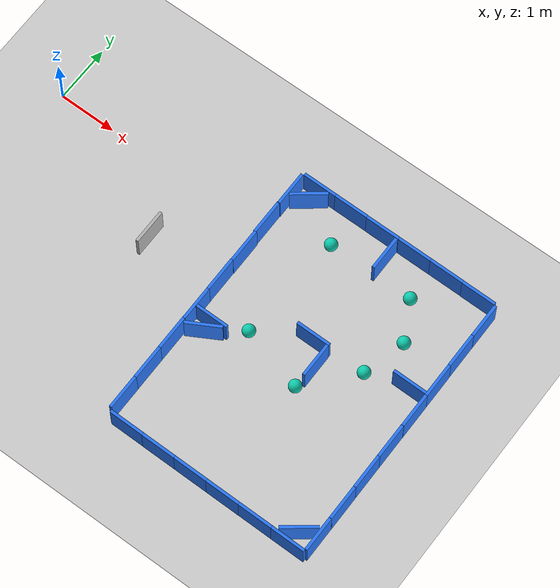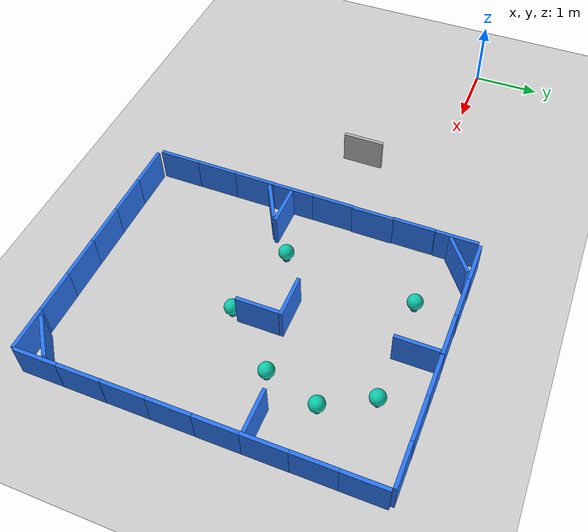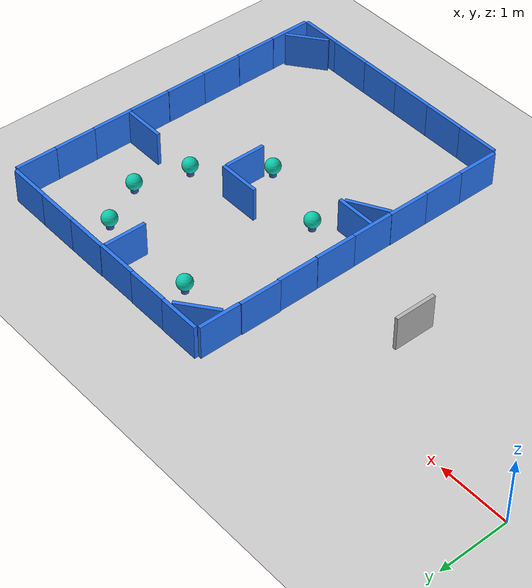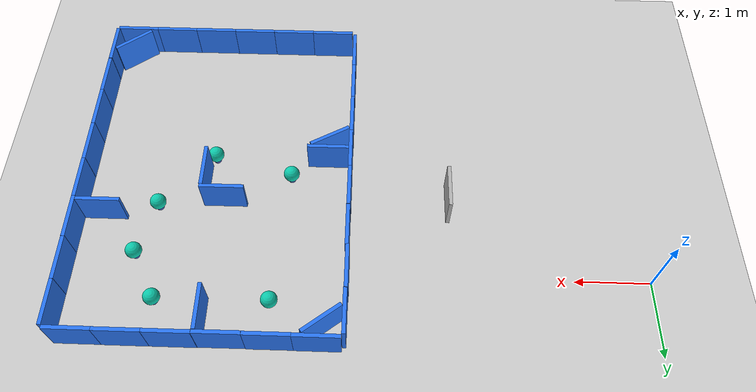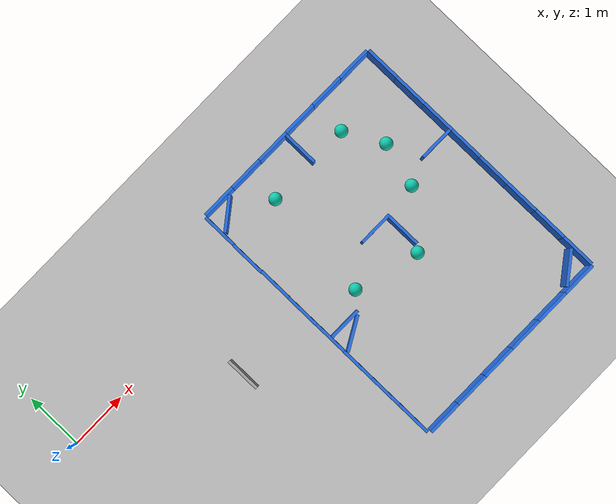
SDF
<sdf version="1.8">
 <world name="default">
  <model name="ground_plane">
   <static>true</static>
   <link name="link">
    <collision name="collision">
     <geometry><plane><normal>0 0 1</normal><size>100 100</size></plane></geometry>
    </collision>
    <visual name="visual">
     <geometry><plane><normal>0 0 1</normal><size>100 100</size></plane></geometry>
     <material>
      <ambient>0.800000012 0.800000012 0.800000012 1</ambient>
      <diffuse>0.800000012 0.800000012 0.800000012 1</diffuse>
      <specular>0.800000012 0.800000012 0.800000012 1</specular>
     </material>
    </visual>
    <inertial>
     <mass>1</mass>
     <inertia><ixx>1</ixx><ixy>0</ixy><ixz>0</ixz><iyy>1</iyy><iyz>0</iyz><izz>1</izz></inertia>
    </inertial>
   </link>
  </model>
  <model name="box_12">
   <pose>2.6281152505346235 -1.1352186579326506 0.26292601227760315 0 0 0</pose>
   <link name="box_link">
    <inertial>
     <inertia><ixx>0.16666</ixx><ixy>0</ixy><ixz>0</ixz><iyy>0.16666</iyy><iyz>0</iyz><izz>0.16666</izz></inertia>
     <mass>1</mass>
    </inertial>
    <collision name="box_collision">
     <geometry><box><size>0.050000000000000003 0.55 0.5</size></box></geometry>
    </collision>
    <visual name="box_visual">
     <geometry><box><size>0.050000000000000003 0.59999999999999998 0.5</size></box></geometry>
     <material>
      <ambient>0.300000012 0.300000012 0.300000012 1</ambient>
      <diffuse>0.699999988 0.699999988 0.699999988 1</diffuse>
      <specular>1 1 1 1</specular>
     </material>
    </visual>
   </link>
   <static>true</static>
  </model>
  <model name="digital_box">
   <pose>3.9757900238 0.67777901887893677 0.26292604207992554 0 0 0</pose>
   <link name="box_link">
    <inertial>
     <inertia><ixx>0.16666</ixx><ixy>0</ixy><ixz>0</ixz><iyy>0.16666</iyy><iyz>0</iyz><izz>0.16666</izz></inertia>
     <mass>1</mass>
    </inertial>
    <collision name="box_collision">
     <geometry><box><size>0.050000000000000003 0.55 0.5</size></box></geometry>
    </collision>
    <visual name="box_visual">
     <geometry><box><size>0.050000000000000003 0.59999999999999998 0.5</size></box></geometry>
     <material>
      <ambient>0.08 0.28 0.75 1</ambient>
      <diffuse>0.16 0.46 0.95 1</diffuse>
      <specular>1 1 1 1</specular>
     </material>
    </visual>
   </link>
   <static>true</static>
  </model>
  <model name="digital_box_1">
   <pose>3.97 0.070000000000000007 0.26000000000000001 0 0 0</pose>
   <link name="box_link">
    <inertial>
     <inertia><ixx>0.16666</ixx><ixy>0</ixy><ixz>0</ixz><iyy>0.16666</iyy><iyz>0</iyz><izz>0.16666</izz></inertia>
     <mass>1</mass>
    </inertial>
    <collision name="box_collision">
     <geometry><box><size>0.050000000000000003 0.55 0.5</size></box></geometry>
    </collision>
    <visual name="box_visual">
     <geometry><box><size>0.050000000000000003 0.59999999999999998 0.5</size></box></geometry>
     <material>
      <ambient>0.08 0.28 0.75 1</ambient>
      <diffuse>0.16 0.46 0.95 1</diffuse>
      <specular>1 1 1 1</specular>
     </material>
    </visual>
   </link>
   <static>true</static>
  </model>
  <model name="digital_box_2">
   <pose>3.98 -0.52000000000000002 0.26000000000000001 0 0 0</pose>
   <link name="box_link">
    <inertial>
     <inertia><ixx>0.16666</ixx><ixy>0</ixy><ixz>0</ixz><iyy>0.16666</iyy><iyz>0</iyz><izz>0.16666</izz></inertia>
     <mass>1</mass>
    </inertial>
    <collision name="box_collision">
     <geometry><box><size>0.050000000000000003 0.55 0.5</size></box></geometry>
    </collision>
    <visual name="box_visual">
     <geometry><box><size>0.050000000000000003 0.59999999999999998 0.5</size></box></geometry>
     <material>
      <ambient>0.08 0.28 0.75 1</ambient>
      <diffuse>0.16 0.46 0.95 1</diffuse>
      <specular>1 1 1 1</specular>
     </material>
    </visual>
   </link>
   <static>true</static>
  </model>
  <model name="digital_box_3">
   <pose>3.97738003731 -1.1138999462127686 0.26708531379699707 0 0 0</pose>
   <link name="box_link">
    <inertial>
     <inertia><ixx>0.16666</ixx><ixy>0</ixy><ixz>0</ixz><iyy>0.16666</iyy><iyz>0</iyz><izz>0.16666</izz></inertia>
     <mass>1</mass>
    </inertial>
    <collision name="box_collision">
     <geometry><box><size>0.050000000000000003 0.55 0.5</size></box></geometry>
    </collision>
    <visual name="box_visual">
     <geometry><box><size>0.050000000000000003 0.59999999999999998 0.5</size></box></geometry>
     <material>
      <ambient>0.08 0.28 0.75 1</ambient>
      <diffuse>0.16 0.46 0.95 1</diffuse>
      <specular>1 1 1 1</specular>
     </material>
    </visual>
   </link>
   <static>true</static>
  </model>
  <model name="digital_box_4">
   <pose>3.97941994667 -1.7115800380706787 0.26702764630317688 0 0 0</pose>
   <link name="box_link">
    <inertial>
     <inertia><ixx>0.16666</ixx><ixy>0</ixy><ixz>0</ixz><iyy>0.16666</iyy><iyz>0</iyz><izz>0.16666</izz></inertia>
     <mass>1</mass>
    </inertial>
    <collision name="box_collision">
     <geometry><box><size>0.050000000000000003 0.55 0.5</size></box></geometry>
    </collision>
    <visual name="box_visual">
     <geometry><box><size>0.050000000000000003 0.59999999999999998 0.5</size></box></geometry>
     <material>
      <ambient>0.08 0.28 0.75 1</ambient>
      <diffuse>0.16 0.46 0.95 1</diffuse>
      <specular>1 1 1 1</specular>
     </material>
    </visual>
   </link>
   <static>true</static>
  </model>
  <model name="digital_box_5">
   <pose>3.97658002377 -2.3114299774169922 0.26691371202468872 0 0 0</pose>
   <link name="box_link">
    <inertial>
     <inertia><ixx>0.16666</ixx><ixy>0</ixy><ixz>0</ixz><iyy>0.16666</iyy><iyz>0</iyz><izz>0.16666</izz></inertia>
     <mass>1</mass>
    </inertial>
    <collision name="box_collision">
     <geometry><box><size>0.050000000000000003 0.55 0.5</size></box></geometry>
    </collision>
    <visual name="box_visual">
     <geometry><box><size>0.050000000000000003 0.59999999999999998 0.5</size></box></geometry>
     <material>
      <ambient>0.08 0.28 0.75 1</ambient>
      <diffuse>0.16 0.46 0.95 1</diffuse>
      <specular>1 1 1 1</specular>
     </material>
    </visual>
   </link>
   <static>true</static>
  </model>
  <model name="digital_box_6">
   <pose>3.97661995888 -2.9101500511169434 0.26712024211883545 0 0 0</pose>
   <link name="box_link">
    <inertial>
     <inertia><ixx>0.16666</ixx><ixy>0</ixy><ixz>0</ixz><iyy>0.16666</iyy><iyz>0</iyz><izz>0.16666</izz></inertia>
     <mass>1</mass>
    </inertial>
    <collision name="box_collision">
     <geometry><box><size>0.050000000000000003 0.55 0.5</size></box></geometry>
    </collision>
    <visual name="box_visual">
     <geometry><box><size>0.050000000000000003 0.59999999999999998 0.5</size></box></geometry>
     <material>
      <ambient>0.08 0.28 0.75 1</ambient>
      <diffuse>0.16 0.46 0.95 1</diffuse>
      <specular>1 1 1 1</specular>
     </material>
    </visual>
   </link>
   <static>true</static>
  </model>
  <model name="digital_box_7">
   <pose>3.97784996033 -3.5036098957061768 0.26729947328567505 0 0 0</pose>
   <link name="box_link">
    <inertial>
     <inertia><ixx>0.16666</ixx><ixy>0</ixy><ixz>0</ixz><iyy>0.16666</iyy><iyz>0</iyz><izz>0.16666</izz></inertia>
     <mass>1</mass>
    </inertial>
    <collision name="box_collision">
     <geometry><box><size>0.050000000000000003 0.55 0.5</size></box></geometry>
    </collision>
    <visual name="box_visual">
     <geometry><box><size>0.050000000000000003 0.59999999999999998 0.5</size></box></geometry>
     <material>
      <ambient>0.08 0.28 0.75 1</ambient>
      <diffuse>0.16 0.46 0.95 1</diffuse>
      <specular>1 1 1 1</specular>
     </material>
    </visual>
   </link>
   <static>true</static>
  </model>
  <model name="digital_box_8">
   <pose>4.30250000954 1.0066399574279787 0.25750440359115601 0 0 1.5658000872875657</pose>
   <link name="box_link">
    <inertial>
     <inertia><ixx>0.16666</ixx><ixy>0</ixy><ixz>0</ixz><iyy>0.16666</iyy><iyz>0</iyz><izz>0.16666</izz></inertia>
     <mass>1</mass>
    </inertial>
    <collision name="box_collision">
     <geometry><box><size>0.050000000000000003 0.55 0.5</size></box></geometry>
    </collision>
    <visual name="box_visual">
     <geometry><box><size>0.050000000000000003 0.59999999999999998 0.5</size></box></geometry>
     <material>
      <ambient>0.08 0.28 0.75 1</ambient>
      <diffuse>0.16 0.46 0.95 1</diffuse>
      <specular>1 1 1 1</specular>
     </material>
    </visual>
   </link>
   <static>true</static>
  </model>
  <model name="digital_box_8_1">
   <pose>4.89910200238 1.0029499530792234 0.26086625456809998 0 0 1.56841005300998</pose>
   <link name="box_link">
    <inertial>
     <inertia><ixx>0.16666</ixx><ixy>0</ixy><ixz>0</ixz><iyy>0.16666</iyy><iyz>0</iyz><izz>0.16666</izz></inertia>
     <mass>1</mass>
    </inertial>
    <collision name="box_collision">
     <geometry><box><size>0.050000000000000003 0.55 0.5</size></box></geometry>
    </collision>
    <visual name="box_visual">
     <geometry><box><size>0.050000000000000003 0.59999999999999998 0.5</size></box></geometry>
     <material>
      <ambient>0.08 0.28 0.75 1</ambient>
      <diffuse>0.16 0.46 0.95 1</diffuse>
      <specular>1 1 1 1</specular>
     </material>
    </visual>
   </link>
   <static>true</static>
  </model>
  <model name="digital_box_8_2">
   <pose>5.49997484684 0.99842858314514138 0.2626970112323761 0 0 1.5700000841906609</pose>
   <link name="box_link">
    <inertial>
     <inertia><ixx>0.16666</ixx><ixy>0</ixy><ixz>0</ixz><iyy>0.16666</iyy><iyz>0</iyz><izz>0.16666</izz></inertia>
     <mass>1</mass>
    </inertial>
    <collision name="box_collision">
     <geometry><box><size>0.050000000000000003 0.55 0.5</size></box></geometry>
    </collision>
    <visual name="box_visual">
     <geometry><box><size>0.050000000000000003 0.59999999999999998 0.5</size></box></geometry>
     <material>
      <ambient>0.08 0.28 0.75 1</ambient>
      <diffuse>0.16 0.46 0.95 1</diffuse>
      <specular>1 1 1 1</specular>
     </material>
    </visual>
   </link>
   <static>true</static>
  </model>
  <model name="digital_box_8_3">
   <pose>6.10222703756 0.99910312174961913 0.25750398635864258 0 0 1.5658000872875657</pose>
   <link name="box_link">
    <inertial>
     <inertia><ixx>0.16666</ixx><ixy>0</ixy><ixz>0</ixz><iyy>0.16666</iyy><iyz>0</iyz><izz>0.16666</izz></inertia>
     <mass>1</mass>
    </inertial>
    <collision name="box_collision">
     <geometry><box><size>0.050000000000000003 0.55 0.5</size></box></geometry>
    </collision>
    <visual name="box_visual">
     <geometry><box><size>0.050000000000000003 0.59999999999999998 0.5</size></box></geometry>
     <material>
      <ambient>0.08 0.28 0.75 1</ambient>
      <diffuse>0.16 0.46 0.95 1</diffuse>
      <specular>1 1 1 1</specular>
     </material>
    </visual>
   </link>
   <static>true</static>
  </model>
  <model name="digital_box_8_4">
   <pose>6.70196291425 0.99650460313267275 0.25750398635864258 0 0 1.5658000872875657</pose>
   <link name="box_link">
    <inertial>
     <inertia><ixx>0.16666</ixx><ixy>0</ixy><ixz>0</ixz><iyy>0.16666</iyy><iyz>0</iyz><izz>0.16666</izz></inertia>
     <mass>1</mass>
    </inertial>
    <collision name="box_collision">
     <geometry><box><size>0.050000000000000003 0.55 0.5</size></box></geometry>
    </collision>
    <visual name="box_visual">
     <geometry><box><size>0.050000000000000003 0.59999999999999998 0.5</size></box></geometry>
     <material>
      <ambient>0.08 0.28 0.75 1</ambient>
      <diffuse>0.16 0.46 0.95 1</diffuse>
      <specular>1 1 1 1</specular>
     </material>
    </visual>
   </link>
   <static>true</static>
  </model>
  <model name="digital_box_8_5">
   <pose>7.3000763395 0.99137905356510148 0.25750398635864258 0 0 1.5658000872875657</pose>
   <link name="box_link">
    <inertial>
     <inertia><ixx>0.16666</ixx><ixy>0</ixy><ixz>0</ixz><iyy>0.16666</iyy><iyz>0</iyz><izz>0.16666</izz></inertia>
     <mass>1</mass>
    </inertial>
    <collision name="box_collision">
     <geometry><box><size>0.050000000000000003 0.55 0.5</size></box></geometry>
    </collision>
    <visual name="box_visual">
     <geometry><box><size>0.050000000000000003 0.59999999999999998 0.5</size></box></geometry>
     <material>
      <ambient>0.08 0.28 0.75 1</ambient>
      <diffuse>0.16 0.46 0.95 1</diffuse>
      <specular>1 1 1 1</specular>
     </material>
    </visual>
   </link>
   <static>true</static>
  </model>
  <model name="digital_box_9">
   <pose>7.62625296394 0.66552933060747566 0.26292601227760315 0 0 0</pose>
   <link name="box_link">
    <inertial>
     <inertia><ixx>0.16666</ixx><ixy>0</ixy><ixz>0</ixz><iyy>0.16666</iyy><iyz>0</iyz><izz>0.16666</izz></inertia>
     <mass>1</mass>
    </inertial>
    <collision name="box_collision">
     <geometry><box><size>0.050000000000000003 0.55 0.5</size></box></geometry>
    </collision>
    <visual name="box_visual">
     <geometry><box><size>0.050000000000000003 0.59999999999999998 0.5</size></box></geometry>
     <material>
      <ambient>0.08 0.28 0.75 1</ambient>
      <diffuse>0.16 0.46 0.95 1</diffuse>
      <specular>1 1 1 1</specular>
     </material>
    </visual>
   </link>
   <static>true</static>
  </model>
  <model name="digital_box_10">
   <pose>7.62570266755 0.065195542834084463 0.26292601227760315 0 0 0</pose>
   <link name="box_link">
    <inertial>
     <inertia><ixx>0.16666</ixx><ixy>0</ixy><ixz>0</ixz><iyy>0.16666</iyy><iyz>0</iyz><izz>0.16666</izz></inertia>
     <mass>1</mass>
    </inertial>
    <collision name="box_collision">
     <geometry><box><size>0.050000000000000003 0.55 0.5</size></box></geometry>
    </collision>
    <visual name="box_visual">
     <geometry><box><size>0.050000000000000003 0.59999999999999998 0.5</size></box></geometry>
     <material>
      <ambient>0.08 0.28 0.75 1</ambient>
      <diffuse>0.16 0.46 0.95 1</diffuse>
      <specular>1 1 1 1</specular>
     </material>
    </visual>
   </link>
   <static>true</static>
  </model>
  <model name="digital_box_11">
   <pose>7.62759279265 -0.53502727789761817 0.26292601227760315 0 0 0</pose>
   <link name="box_link">
    <inertial>
     <inertia><ixx>0.16666</ixx><ixy>0</ixy><ixz>0</ixz><iyy>0.16666</iyy><iyz>0</iyz><izz>0.16666</izz></inertia>
     <mass>1</mass>
    </inertial>
    <collision name="box_collision">
     <geometry><box><size>0.050000000000000003 0.55 0.5</size></box></geometry>
    </collision>
    <visual name="box_visual">
     <geometry><box><size>0.050000000000000003 0.59999999999999998 0.5</size></box></geometry>
     <material>
      <ambient>0.08 0.28 0.75 1</ambient>
      <diffuse>0.16 0.46 0.95 1</diffuse>
      <specular>1 1 1 1</specular>
     </material>
    </visual>
   </link>
   <static>true</static>
  </model>
  <model name="digital_box_12">
   <pose>7.62811525053 -1.1352186579326506 0.26292601227760315 0 0 0</pose>
   <link name="box_link">
    <inertial>
     <inertia><ixx>0.16666</ixx><ixy>0</ixy><ixz>0</ixz><iyy>0.16666</iyy><iyz>0</iyz><izz>0.16666</izz></inertia>
     <mass>1</mass>
    </inertial>
    <collision name="box_collision">
     <geometry><box><size>0.050000000000000003 0.55 0.5</size></box></geometry>
    </collision>
    <visual name="box_visual">
     <geometry><box><size>0.050000000000000003 0.59999999999999998 0.5</size></box></geometry>
     <material>
      <ambient>0.08 0.28 0.75 1</ambient>
      <diffuse>0.16 0.46 0.95 1</diffuse>
      <specular>1 1 1 1</specular>
     </material>
    </visual>
   </link>
   <static>true</static>
  </model>
  <model name="digital_box_13">
   <pose>7.62679487049 -1.7371728259073804 0.26292601227760315 0 0 0</pose>
   <link name="box_link">
    <inertial>
     <inertia><ixx>0.16666</ixx><ixy>0</ixy><ixz>0</ixz><iyy>0.16666</iyy><iyz>0</iyz><izz>0.16666</izz></inertia>
     <mass>1</mass>
    </inertial>
    <collision name="box_collision">
     <geometry><box><size>0.050000000000000003 0.55 0.5</size></box></geometry>
    </collision>
    <visual name="box_visual">
     <geometry><box><size>0.050000000000000003 0.59999999999999998 0.5</size></box></geometry>
     <material>
      <ambient>0.08 0.28 0.75 1</ambient>
      <diffuse>0.16 0.46 0.95 1</diffuse>
      <specular>1 1 1 1</specular>
     </material>
    </visual>
   </link>
   <static>true</static>
  </model>
  <model name="digital_box_14">
   <pose>7.62676143054 -2.3366292042299199 0.26292601227760315 0 0 0</pose>
   <link name="box_link">
    <inertial>
     <inertia><ixx>0.16666</ixx><ixy>0</ixy><ixz>0</ixz><iyy>0.16666</iyy><iyz>0</iyz><izz>0.16666</izz></inertia>
     <mass>1</mass>
    </inertial>
    <collision name="box_collision">
     <geometry><box><size>0.050000000000000003 0.55 0.5</size></box></geometry>
    </collision>
    <visual name="box_visual">
     <geometry><box><size>0.050000000000000003 0.59999999999999998 0.5</size></box></geometry>
     <material>
      <ambient>0.08 0.28 0.75 1</ambient>
      <diffuse>0.16 0.46 0.95 1</diffuse>
      <specular>1 1 1 1</specular>
     </material>
    </visual>
   </link>
   <static>true</static>
  </model>
  <model name="digital_box_15">
   <pose>7.62800062699 -2.9389073220340531 0.26292601227760315 0 0 0</pose>
   <link name="box_link">
    <inertial>
     <inertia><ixx>0.16666</ixx><ixy>0</ixy><ixz>0</ixz><iyy>0.16666</iyy><iyz>0</iyz><izz>0.16666</izz></inertia>
     <mass>1</mass>
    </inertial>
    <collision name="box_collision">
     <geometry><box><size>0.050000000000000003 0.55 0.5</size></box></geometry>
    </collision>
    <visual name="box_visual">
     <geometry><box><size>0.050000000000000003 0.59999999999999998 0.5</size></box></geometry>
     <material>
      <ambient>0.08 0.28 0.75 1</ambient>
      <diffuse>0.16 0.46 0.95 1</diffuse>
      <specular>1 1 1 1</specular>
     </material>
    </visual>
   </link>
   <static>true</static>
  </model>
  <model name="digital_box_16">
   <pose>7.62747646768 -3.5421945732274764 0.26292601227760315 0 0 0</pose>
   <link name="box_link">
    <inertial>
     <inertia><ixx>0.16666</ixx><ixy>0</ixy><ixz>0</ixz><iyy>0.16666</iyy><iyz>0</iyz><izz>0.16666</izz></inertia>
     <mass>1</mass>
    </inertial>
    <collision name="box_collision">
     <geometry><box><size>0.050000000000000003 0.55 0.5</size></box></geometry>
    </collision>
    <visual name="box_visual">
     <geometry><box><size>0.050000000000000003 0.59999999999999998 0.5</size></box></geometry>
     <material>
      <ambient>0.08 0.28 0.75 1</ambient>
      <diffuse>0.16 0.46 0.95 1</diffuse>
      <specular>1 1 1 1</specular>
     </material>
    </visual>
   </link>
   <static>true</static>
  </model>
  <model name="digital_box_8_5_1">
   <pose>7.31709759342 -3.8655655792473209 0.25750398635864258 0 0 1.5658000872875657</pose>
   <link name="box_link">
    <inertial>
     <inertia><ixx>0.16666</ixx><ixy>0</ixy><ixz>0</ixz><iyy>0.16666</iyy><iyz>0</iyz><izz>0.16666</izz></inertia>
     <mass>1</mass>
    </inertial>
    <collision name="box_collision">
     <geometry><box><size>0.050000000000000003 0.55 0.5</size></box></geometry>
    </collision>
    <visual name="box_visual">
     <geometry><box><size>0.050000000000000003 0.59999999999999998 0.5</size></box></geometry>
     <material>
      <ambient>0.08 0.28 0.75 1</ambient>
      <diffuse>0.16 0.46 0.95 1</diffuse>
      <specular>1 1 1 1</specular>
     </material>
    </visual>
   </link>
   <static>true</static>
  </model>
  <model name="digital_box_8_5_2">
   <pose>6.71833806533 -3.862349183830966 0.25750398635864258 0 0 1.5658000872875657</pose>
   <link name="box_link">
    <inertial>
     <inertia><ixx>0.16666</ixx><ixy>0</ixy><ixz>0</ixz><iyy>0.16666</iyy><iyz>0</iyz><izz>0.16666</izz></inertia>
     <mass>1</mass>
    </inertial>
    <collision name="box_collision">
     <geometry><box><size>0.050000000000000003 0.55 0.5</size></box></geometry>
    </collision>
    <visual name="box_visual">
     <geometry><box><size>0.050000000000000003 0.59999999999999998 0.5</size></box></geometry>
     <material>
      <ambient>0.08 0.28 0.75 1</ambient>
      <diffuse>0.16 0.46 0.95 1</diffuse>
      <specular>1 1 1 1</specular>
     </material>
    </visual>
   </link>
   <static>true</static>
  </model>
  <model name="digital_box_8_5_3">
   <pose>6.11907645227 -3.8600206948799998 0.25750398635864258 0 0 1.5658000872875657</pose>
   <link name="box_link">
    <inertial>
     <inertia><ixx>0.16666</ixx><ixy>0</ixy><ixz>0</ixz><iyy>0.16666</iyy><iyz>0</iyz><izz>0.16666</izz></inertia>
     <mass>1</mass>
    </inertial>
    <collision name="box_collision">
     <geometry><box><size>0.050000000000000003 0.55 0.5</size></box></geometry>
    </collision>
    <visual name="box_visual">
     <geometry><box><size>0.050000000000000003 0.59999999999999998 0.5</size></box></geometry>
     <material>
      <ambient>0.08 0.28 0.75 1</ambient>
      <diffuse>0.16 0.46 0.95 1</diffuse>
      <specular>1 1 1 1</specular>
     </material>
    </visual>
   </link>
   <static>true</static>
  </model>
  <model name="digital_box_8_5_4">
   <pose>5.52016775223 -3.8568482565905109 0.25750398635864258 0 0 1.5658000872875657</pose>
   <link name="box_link">
    <inertial>
     <inertia><ixx>0.16666</ixx><ixy>0</ixy><ixz>0</ixz><iyy>0.16666</iyy><iyz>0</iyz><izz>0.16666</izz></inertia>
     <mass>1</mass>
    </inertial>
    <collision name="box_collision">
     <geometry><box><size>0.050000000000000003 0.55 0.5</size></box></geometry>
    </collision>
    <visual name="box_visual">
     <geometry><box><size>0.050000000000000003 0.59999999999999998 0.5</size></box></geometry>
     <material>
      <ambient>0.08 0.28 0.75 1</ambient>
      <diffuse>0.16 0.46 0.95 1</diffuse>
      <specular>1 1 1 1</specular>
     </material>
    </visual>
   </link>
   <static>true</static>
  </model>
  <model name="digital_box_8_5_5">
   <pose>4.91987884112 -3.8538894517536315 0.25750398635864258 0 0 1.5658000872875657</pose>
   <link name="box_link">
    <inertial>
     <inertia><ixx>0.16666</ixx><ixy>0</ixy><ixz>0</ixz><iyy>0.16666</iyy><iyz>0</iyz><izz>0.16666</izz></inertia>
     <mass>1</mass>
    </inertial>
    <collision name="box_collision">
     <geometry><box><size>0.050000000000000003 0.55 0.5</size></box></geometry>
    </collision>
    <visual name="box_visual">
     <geometry><box><size>0.050000000000000003 0.59999999999999998 0.5</size></box></geometry>
     <material>
      <ambient>0.08 0.28 0.75 1</ambient>
      <diffuse>0.16 0.46 0.95 1</diffuse>
      <specular>1 1 1 1</specular>
     </material>
    </visual>
   </link>
   <static>true</static>
  </model>
  <model name="digital_box_8_5_6">
   <pose>4.32015683386 -3.8498007437380806 0.25750398635864258 0 0 1.5658000872875657</pose>
   <link name="box_link">
    <inertial>
     <inertia><ixx>0.16666</ixx><ixy>0</ixy><ixz>0</ixz><iyy>0.16666</iyy><iyz>0</iyz><izz>0.16666</izz></inertia>
     <mass>1</mass>
    </inertial>
    <collision name="box_collision">
     <geometry><box><size>0.050000000000000003 0.55 0.5</size></box></geometry>
    </collision>
    <visual name="box_visual">
     <geometry><box><size>0.050000000000000003 0.59999999999999998 0.5</size></box></geometry>
     <material>
      <ambient>0.08 0.28 0.75 1</ambient>
      <diffuse>0.16 0.46 0.95 1</diffuse>
      <specular>1 1 1 1</specular>
     </material>
    </visual>
   </link>
   <static>true</static>
  </model>
  <model name="digital_box_8_5_7">
   <pose>4.28200768824 -1.7295482278429848 0.25750398635864258 0 0 1.5658000872875657</pose>
   <link name="box_link">
    <inertial>
     <inertia><ixx>0.16666</ixx><ixy>0</ixy><ixz>0</ixz><iyy>0.16666</iyy><iyz>0</iyz><izz>0.16666</izz></inertia>
     <mass>1</mass>
    </inertial>
    <collision name="box_collision">
     <geometry><box><size>0.050000000000000003 0.55 0.5</size></box></geometry>
    </collision>
    <visual name="box_visual">
     <geometry><box><size>0.050000000000000003 0.59999999999999998 0.5</size></box></geometry>
     <material>
      <ambient>0.08 0.28 0.75 1</ambient>
      <diffuse>0.16 0.46 0.95 1</diffuse>
      <specular>1 1 1 1</specular>
     </material>
    </visual>
   </link>
   <static>true</static>
  </model>
  <model name="digital_box_8_5_9">
   <pose>7.31068828131 -0.80301534855683077 0.25750398635864258 0 0 1.5658000872875657</pose>
   <link name="box_link">
    <inertial>
     <inertia><ixx>0.16666</ixx><ixy>0</ixy><ixz>0</ixz><iyy>0.16666</iyy><iyz>0</iyz><izz>0.16666</izz></inertia>
     <mass>1</mass>
    </inertial>
    <collision name="box_collision">
     <geometry><box><size>0.050000000000000003 0.55 0.5</size></box></geometry>
    </collision>
    <visual name="box_visual">
     <geometry><box><size>0.050000000000000003 0.59999999999999998 0.5</size></box></geometry>
     <material>
      <ambient>0.08 0.28 0.75 1</ambient>
      <diffuse>0.16 0.46 0.95 1</diffuse>
      <specular>1 1 1 1</specular>
     </material>
    </visual>
   </link>
   <static>true</static>
  </model>
  <model name="digital_box_1_1">
   <pose>5.77402352846 0.66890409951665486 0.26661500334739685 0 0 0</pose>
   <link name="box_link">
    <inertial>
     <inertia><ixx>0.16666</ixx><ixy>0</ixy><ixz>0</ixz><iyy>0.16666</iyy><iyz>0</iyz><izz>0.16666</izz></inertia>
     <mass>1</mass>
    </inertial>
    <collision name="box_collision">
     <geometry><box><size>0.050000000000000003 0.55 0.5</size></box></geometry>
    </collision>
    <visual name="box_visual">
     <geometry><box><size>0.050000000000000003 0.59999999999999998 0.5</size></box></geometry>
     <material>
      <ambient>0.08 0.28 0.75 1</ambient>
      <diffuse>0.16 0.46 0.95 1</diffuse>
      <specular>1 1 1 1</specular>
     </material>
    </visual>
   </link>
   <static>true</static>
  </model>
  <model name="digital_box_1_2_2">
   <pose>4.25369871486 0.77809146078665803 0.26661500334739685 0 0 -0.9211320022812256</pose>
   <link name="box_link">
    <inertial>
     <inertia><ixx>0.16666</ixx><ixy>0</ixy><ixz>0</ixz><iyy>0.16666</iyy><iyz>0</iyz><izz>0.16666</izz></inertia>
     <mass>1</mass>
    </inertial>
    <collision name="box_collision">
     <geometry><box><size>0.050000000000000003 0.55 0.5</size></box></geometry>
    </collision>
    <visual name="box_visual">
     <geometry><box><size>0.050000000000000003 0.59999999999999998 0.5</size></box></geometry>
     <material>
      <ambient>0.08 0.28 0.75 1</ambient>
      <diffuse>0.16 0.46 0.95 1</diffuse>
      <specular>1 1 1 1</specular>
     </material>
    </visual>
   </link>
   <static>true</static>
  </model>
  <model name="digital_box_1_2_3">
   <pose>7.34260860923 -3.6236037284401896 0.26661500334739685 0 0 -0.9211320022812256</pose>
   <link name="box_link">
    <inertial>
     <inertia><ixx>0.16666</ixx><ixy>0</ixy><ixz>0</ixz><iyy>0.16666</iyy><iyz>0</iyz><izz>0.16666</izz></inertia>
     <mass>1</mass>
    </inertial>
    <collision name="box_collision">
     <geometry><box><size>0.050000000000000003 0.55 0.5</size></box></geometry>
    </collision>
    <visual name="box_visual">
     <geometry><box><size>0.050000000000000003 0.59999999999999998 0.5</size></box></geometry>
     <material>
      <ambient>0.08 0.28 0.75 1</ambient>
      <diffuse>0.16 0.46 0.95 1</diffuse>
      <specular>1 1 1 1</specular>
     </material>
    </visual>
   </link>
   <static>true</static>
  </model>
  <model name="digital_box_8_5_8_3">
   <pose>4.27366749772 -1.9181128806837573 0.25750398635864258 0 0 2.0823900577787207</pose>
   <link name="box_link">
    <inertial>
     <inertia><ixx>0.16666</ixx><ixy>0</ixy><ixz>0</ixz><iyy>0.16666</iyy><iyz>0</iyz><izz>0.16666</izz></inertia>
     <mass>1</mass>
    </inertial>
    <collision name="box_collision">
     <geometry><box><size>0.050000000000000003 0.55 0.5</size></box></geometry>
    </collision>
    <visual name="box_visual">
     <geometry><box><size>0.050000000000000003 0.59999999999999998 0.5</size></box></geometry>
     <material>
      <ambient>0.08 0.28 0.75 1</ambient>
      <diffuse>0.16 0.46 0.95 1</diffuse>
      <specular>1 1 1 1</specular>
     </material>
    </visual>
   </link>
   <static>true</static>
  </model>
  <model name="digital_box_1_1_1">
   <pose>5.97109466824 -1.3696296970979935 0.26661500334739685 0 0 0</pose>
   <link name="box_link">
    <inertial>
     <inertia><ixx>0.16666</ixx><ixy>0</ixy><ixz>0</ixz><iyy>0.16666</iyy><iyz>0</iyz><izz>0.16666</izz></inertia>
     <mass>1</mass>
    </inertial>
    <collision name="box_collision">
     <geometry><box><size>0.050000000000000003 0.55 0.5</size></box></geometry>
    </collision>
    <visual name="box_visual">
     <geometry><box><size>0.050000000000000003 0.59999999999999998 0.5</size></box></geometry>
     <material>
      <ambient>0.08 0.28 0.75 1</ambient>
      <diffuse>0.16 0.46 0.95 1</diffuse>
      <specular>1 1 1 1</specular>
     </material>
    </visual>
   </link>
   <static>true</static>
  </model>
  <model name="digital_box_8_1_1">
   <pose>5.69148297126 -1.0442157666892553 0.26086598634719849 0 0 1.56841005300998</pose>
   <link name="box_link">
    <inertial>
     <inertia><ixx>0.16666</ixx><ixy>0</ixy><ixz>0</ixz><iyy>0.16666</iyy><iyz>0</iyz><izz>0.16666</izz></inertia>
     <mass>1</mass>
    </inertial>
    <collision name="box_collision">
     <geometry><box><size>0.050000000000000003 0.55 0.5</size></box></geometry>
    </collision>
    <visual name="box_visual">
     <geometry><box><size>0.050000000000000003 0.59999999999999998 0.5</size></box></geometry>
     <material>
      <ambient>0.08 0.28 0.75 1</ambient>
      <diffuse>0.16 0.46 0.95 1</diffuse>
      <specular>1 1 1 1</specular>
     </material>
    </visual>
   </link>
   <static>true</static>
  </model>
  <model name="digital_plant_a">
   <pose>4.95 0.42 0 0 0 0</pose>
   <static>true</static>
   <link name="plant_link">
    <visual name="pot_visual">
     <pose>0 0 0.035 0 0 0</pose>
     <geometry><cylinder><radius>0.05</radius><length>0.07</length></cylinder></geometry>
     <material><ambient>0.18 0.22 0.40 1</ambient><diffuse>0.25 0.35 0.70 1</diffuse></material>
    </visual>
    <visual name="leaf_visual">
     <pose>0 0 0.16 0 0 0</pose>
     <geometry><sphere><radius>0.11</radius></sphere></geometry>
     <material><ambient>0.02 0.38 0.35 1</ambient><diffuse>0.05 0.80 0.68 1</diffuse></material>
    </visual>
   </link>
  </model>
  <model name="digital_plant_b">
   <pose>6.45 0.42 0 0 0 0</pose>
   <static>true</static>
   <link name="plant_link">
    <visual name="pot_visual">
     <pose>0 0 0.035 0 0 0</pose>
     <geometry><cylinder><radius>0.05</radius><length>0.07</length></cylinder></geometry>
     <material><ambient>0.18 0.22 0.40 1</ambient><diffuse>0.25 0.35 0.70 1</diffuse></material>
    </visual>
    <visual name="leaf_visual">
     <pose>0 0 0.16 0 0 0</pose>
     <geometry><sphere><radius>0.11</radius></sphere></geometry>
     <material><ambient>0.02 0.38 0.35 1</ambient><diffuse>0.05 0.80 0.68 1</diffuse></material>
    </visual>
   </link>
  </model>
  <model name="digital_plant_c">
   <pose>6.80 -0.23 0 0 0 0</pose>
   <static>true</static>
   <link name="plant_link">
    <visual name="pot_visual">
     <pose>0 0 0.035 0 0 0</pose>
     <geometry><cylinder><radius>0.05</radius><length>0.07</length></cylinder></geometry>
     <material><ambient>0.18 0.22 0.40 1</ambient><diffuse>0.25 0.35 0.70 1</diffuse></material>
    </visual>
    <visual name="leaf_visual">
     <pose>0 0 0.16 0 0 0</pose>
     <geometry><sphere><radius>0.11</radius></sphere></geometry>
     <material><ambient>0.02 0.38 0.35 1</ambient><diffuse>0.05 0.80 0.68 1</diffuse></material>
    </visual>
   </link>
  </model>
  <model name="digital_plant_d">
   <pose>6.60 -0.98 0 0 0 0</pose>
   <static>true</static>
   <link name="plant_link">
    <visual name="pot_visual">
     <pose>0 0 0.035 0 0 0</pose>
     <geometry><cylinder><radius>0.05</radius><length>0.07</length></cylinder></geometry>
     <material><ambient>0.18 0.22 0.40 1</ambient><diffuse>0.25 0.35 0.70 1</diffuse></material>
    </visual>
    <visual name="leaf_visual">
     <pose>0 0 0.16 0 0 0</pose>
     <geometry><sphere><radius>0.11</radius></sphere></geometry>
     <material><ambient>0.02 0.38 0.35 1</ambient><diffuse>0.05 0.80 0.68 1</diffuse></material>
    </visual>
   </link>
  </model>
  <model name="digital_plant_e">
   <pose>5.90 -1.78 0 0 0 0</pose>
   <static>true</static>
   <link name="plant_link">
    <visual name="pot_visual">
     <pose>0 0 0.035 0 0 0</pose>
     <geometry><cylinder><radius>0.05</radius><length>0.07</length></cylinder></geometry>
     <material><ambient>0.18 0.22 0.40 1</ambient><diffuse>0.25 0.35 0.70 1</diffuse></material>
    </visual>
    <visual name="leaf_visual">
     <pose>0 0 0.16 0 0 0</pose>
     <geometry><sphere><radius>0.11</radius></sphere></geometry>
     <material><ambient>0.02 0.38 0.35 1</ambient><diffuse>0.05 0.80 0.68 1</diffuse></material>
    </visual>
   </link>
  </model>
  <model name="digital_plant_f">
   <pose>4.80 -1.48 0 0 0 0</pose>
   <static>true</static>
   <link name="plant_link">
    <visual name="pot_visual">
     <pose>0 0 0.035 0 0 0</pose>
     <geometry><cylinder><radius>0.05</radius><length>0.07</length></cylinder></geometry>
     <material><ambient>0.18 0.22 0.40 1</ambient><diffuse>0.25 0.35 0.70 1</diffuse></material>
    </visual>
    <visual name="leaf_visual">
     <pose>0 0 0.16 0 0 0</pose>
     <geometry><sphere><radius>0.11</radius></sphere></geometry>
     <material><ambient>0.02 0.38 0.35 1</ambient><diffuse>0.05 0.80 0.68 1</diffuse></material>
    </visual>
   </link>
  </model>
 </world>
</sdf>
